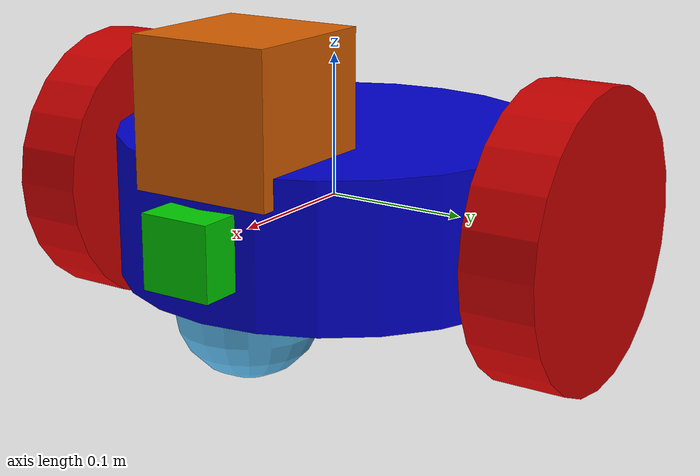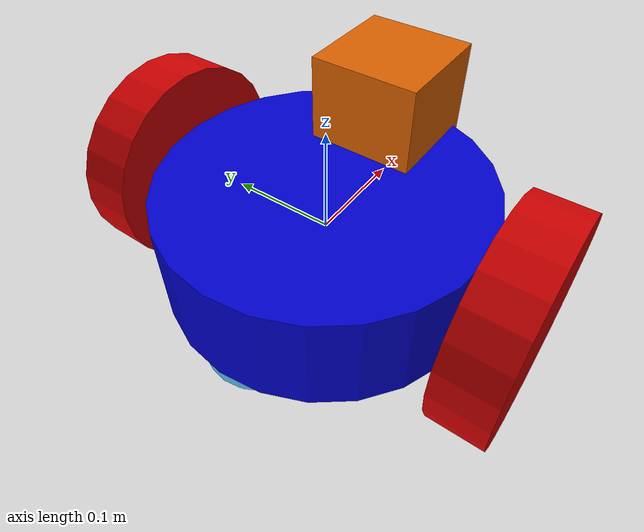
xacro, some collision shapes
<?xml version='1.0'?>

<robot name="my_robot"
  xmlns:xacro="http://www.ros.org/wiki/xacro">

  <xacro:include filename="$(find home_service_robot)/urdf/my_robot.gazebo" />

  <material name="blue">
    <color rgba="0 0 0.8 1"/>
  </material>

  <material name="red">
    <color rgba="0.8 0 0 1"/>
  </material>

  <material name="green">
    <color rgba="0 0.8 0 1"/>
  </material>

  <link name="robot_footprint"></link>

  <joint name="robot_footprint_joint" type="fixed">
    <origin xyz="0 0 0" rpy="0 0 0" />
    <parent link="robot_footprint"/>
    <child link="chassis" />
  </joint>
  <!-- Chassis + casters -->
  <link name='chassis'>
    <pose>0 0 0.1 0 0 0</pose>

    <inertial>
      <mass value="15.0"/>
      <origin xyz="0.0 0 0" rpy=" 0 0 0"/>
      <inertia ixx="0.1" ixy="0" ixz="0" iyy="0.1" iyz="0" izz="0.1" />
    </inertial>

    <collision name='collision'>
      <origin xyz="0 0 0" rpy=" 0 0 0"/>
      <geometry>
        <cylinder radius="0.15" length="0.1"/>
      </geometry>
    </collision>

    <visual name='chassis_visual'>
      <origin xyz="0 0 0" rpy=" 0 0 0"/>
      <geometry>
        <cylinder radius="0.15" length="0.1"/>
      </geometry>
      <material name="blue"/>
    </visual>

    <collision name='back_caster_collision'>
      <origin xyz="-0.10 0 -0.05" rpy=" 0 0 0"/>
      <geometry>
        <sphere radius="0.0499"/>
      </geometry>
    </collision>

    <visual name='back_caster_visual'>
      <origin xyz="-0.10 0 -0.05" rpy=" 0 0 0"/>
      <geometry>
        <sphere radius="0.05"/>
      </geometry>
    </visual>

    <collision name='front_caster_collision'>
      <origin xyz="0.10 0 -0.05" rpy=" 0 0 0"/>
      <geometry>
        <sphere radius="0.0499"/>
      </geometry>
    </collision>

    <visual name='front_caster_visual'>
      <origin xyz="0.10 0 -0.05" rpy=" 0 0 0"/>
      <geometry>
        <sphere radius="0.05"/>
      </geometry>
    </visual>

  </link>
  <!-- Left wheel -->
  <link name='left_wheel'>
    <inertial>
      <mass value="5.0"/>
      <origin xyz="0.0 0 0" rpy="0 1.5707 1.5707"/>
      <inertia ixx="0.1" ixy="0" ixz="0" iyy="0.1" iyz="0" izz="0.1" />
    </inertial>

    <collision>
      <origin xyz="0 0 0" rpy="0 1.5707 1.5707"/>
      <geometry>
        <cylinder radius="0.1" length="0.05"/>
      </geometry>
    </collision>

    <visual>
      <origin xyz="0 0 0" rpy="0 1.5707 1.5707"/>
      <geometry>
        <cylinder radius="0.1" length="0.05"/>
      </geometry>
      <material name="red"/>
    </visual>
  </link>

  <joint type="continuous" name="left_wheel_hinge">
    <origin xyz="0 0.18 0" rpy="0 0 0"/>
    <child link="left_wheel"/>
    <parent link="chassis"/>
    <axis xyz="0 1 0" rpy="0 0 0"/>
    <limit effort="10000" velocity="1000"/>
    <dynamics damping="1.0" friction="1.0"/>
  </joint>

  <!-- Right wheel -->
  <link name='right_wheel'>
    <inertial>
      <mass value="5.0"/>
      <origin xyz="0.0 0 0" rpy="0 1.5707 1.5707"/>
      <inertia ixx="0.1" ixy="0" ixz="0" iyy="0.1" iyz="0" izz="0.1" />
    </inertial>

    <collision>
      <origin xyz="0 0 0" rpy="0 1.5707 1.5707"/>
      <geometry>
        <cylinder radius="0.1" length="0.05"/>
      </geometry>
    </collision>

    <visual>
      <origin xyz="0 0 0" rpy="0 1.5707 1.5707"/>
      <geometry>
        <cylinder radius="0.1" length="0.05"/>
      </geometry>
      <material name="red"/>
    </visual>
  </link>

  <joint type="continuous" name="right_wheel_hinge">
    <origin xyz="0 -0.18 0" rpy="0 0 0"/>
    <child link="right_wheel"/>
    <parent link="chassis"/>
    <axis xyz="0 1 0" rpy="0 0 0"/>
    <limit effort="10000" velocity="1000"/>
    <dynamics damping="1.0" friction="1.0"/>
  </joint>

  <!-- camera -->
  <link name='camera'>
    <inertial>
      <mass value="0.1"/>
      <origin xyz="0.0 0 0" rpy="0 0 0"/>
      <inertia ixx="1e-6" ixy="0" ixz="0" iyy="1e-6" iyz="0" izz="1e-6"/>
    </inertial>

    <collision>
      <origin xyz="0.0 0 0" rpy="0 0 0"/>
      <geometry>
        <box size="0.05 0.05 0.05"/>
      </geometry>
    </collision>

    <visual>
      <origin xyz="0.0 0 0" rpy="0 0 0"/>
      <geometry>
        <box size="0.05 0.05 0.05"/>
      </geometry>
      <material name="green"/>
    </visual>
  </link>

  <joint type="fixed" name="camera_joint">
    <origin xyz="0.15 0 0" rpy="0 0 0"/>
    <child link="camera"/>
    <parent link="chassis"/>
    <axis xyz="0 1 0" rpy="0 0 0"/>
  </joint>

  <!-- laser -->
  <link name='hokuyo'>
    <inertial>
      <mass value="1e-5"/>
      <origin xyz="0.0 0 0" rpy="0 0 0"/>
      <inertia ixx="1e-6" ixy="0" ixz="0" iyy="1e-6" iyz="0" izz="1e-6"/>
    </inertial>

    <collision>
      <origin xyz="0.0 0 0" rpy="0 0 0"/>
      <geometry>
        <box size="0.1 0.1 0.1"/>
      </geometry>
    </collision>

    <visual>
      <origin xyz="0.0 0 0" rpy="0 0 0"/>
      <geometry>
        <mesh filename="package://home_service_robot/meshes/hokuyo.dae"/>
      </geometry>
    </visual>
  </link>

  <joint type="fixed" name="hokuyo_joint">
    <origin xyz="0.10 0 0.08" rpy="0 0 0"/>
    <child link="hokuyo"/>
    <parent link="chassis"/>
    <axis xyz="0 1 0" rpy="0 0 0"/>
  </joint>

  <joint name="camera_optical_joint" type="fixed">
    <origin xyz="0 0 0" rpy="-1.5707 0 -1.5707"/>
    <parent link="camera"/>
    <child link="camera_link_optical"/>
  </joint>

  <link name="camera_link_optical">
  </link>
</robot>
